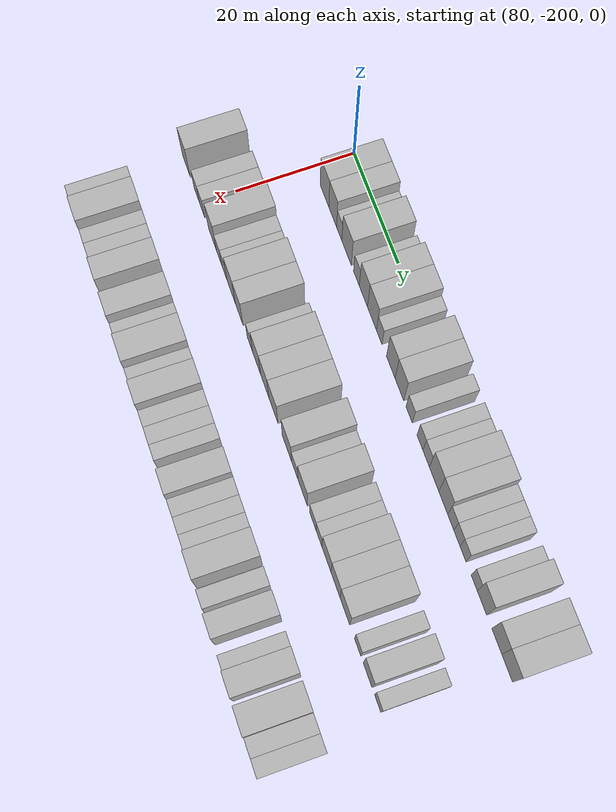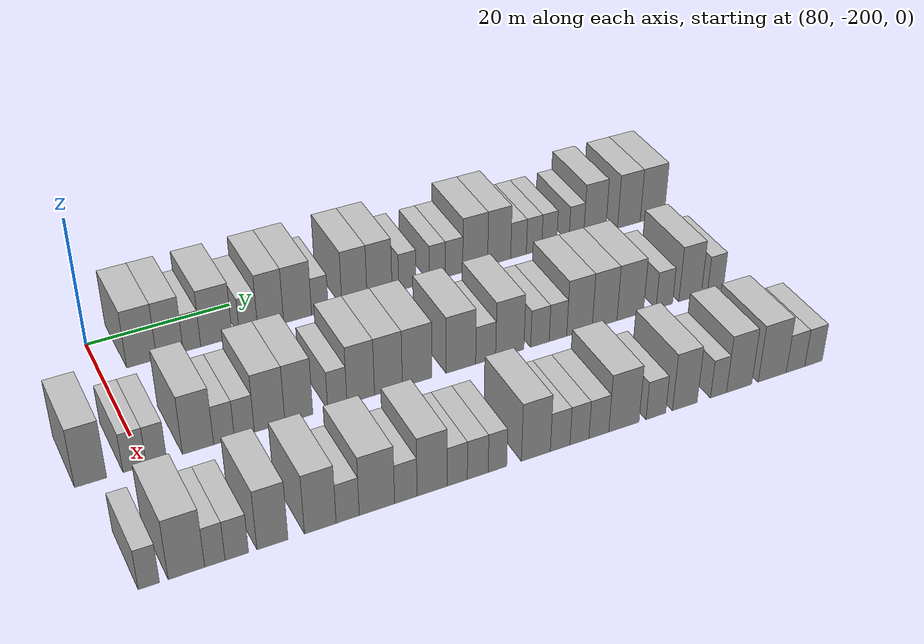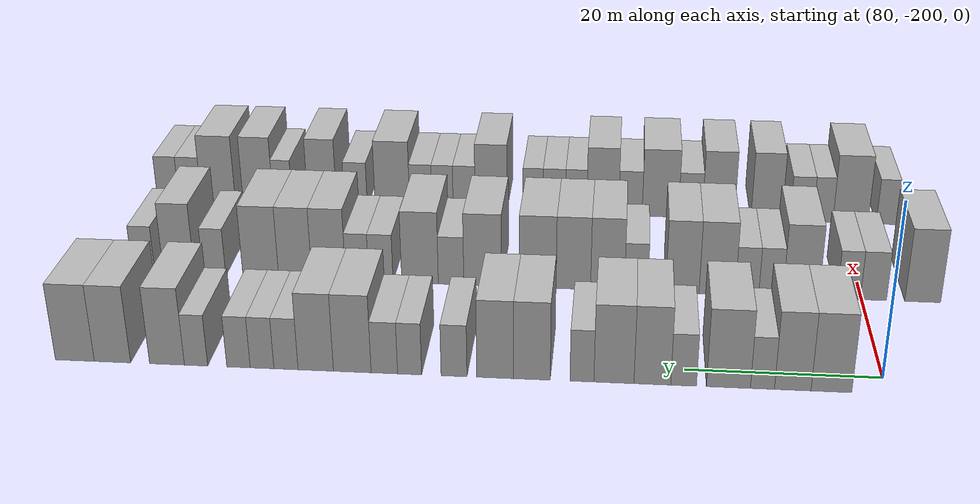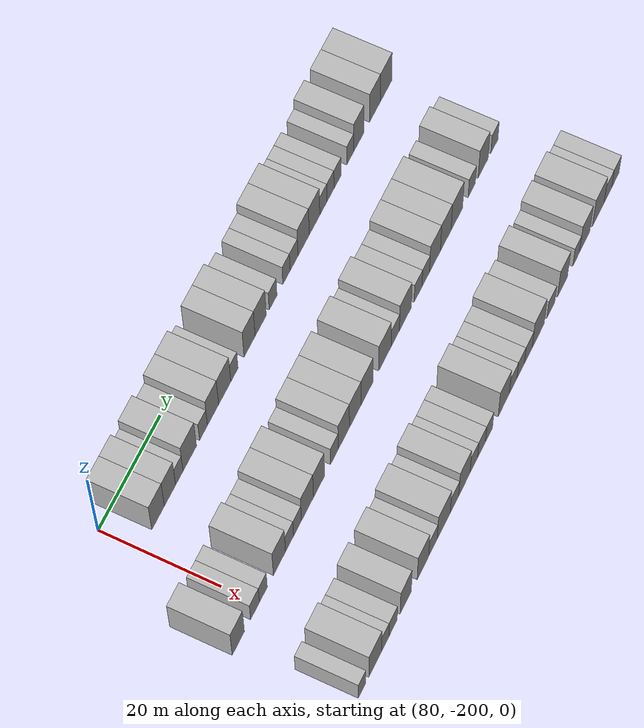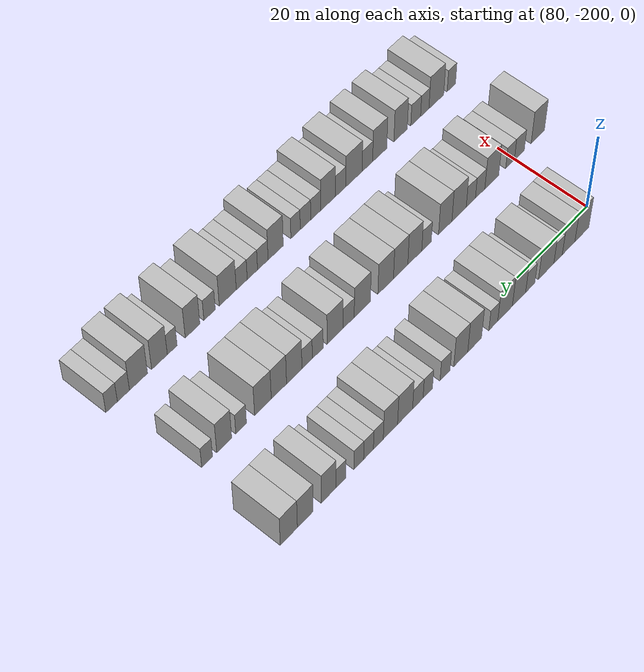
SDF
<sdf version="1.6">
 <world name="default">
  <model name="building_561">
   <static>1</static>
   <pose>82.0000 -194.5143 0 0.000000 0.000000 0.000000</pose>
   <link name="link">
    <pose>0 0 4.50 0 0 0</pose>
    <collision name="collision"><geometry><box><size>10.0000 4.0336 9.0000</size></box></geometry></collision>
    <visual name="visual">
     <cast_shadows>0</cast_shadows>
     <geometry><box><size>10.0000 4.0336 9.0000</size></box></geometry>
     <material>
      <script>
       <uri>model://HANNAS_wall/materials/scripts</uri>
       <uri>model://HANNAS_wall/materials/textures</uri>
       <name>vrc/HANNAS_wall</name>
      </script>
     </material>
    </visual>
   </link>
  </model>
  <model name="building_562">
   <static>1</static>
   <pose>82.0000 -190.6837 0 0.000000 0.000000 0.000000</pose>
   <link name="link">
    <pose>0 0 4.50 0 0 0</pose>
    <collision name="collision"><geometry><box><size>10.0000 3.6277 9.0000</size></box></geometry></collision>
    <visual name="visual">
     <cast_shadows>0</cast_shadows>
     <geometry><box><size>10.0000 3.6277 9.0000</size></box></geometry>
     <material>
      <script>
       <uri>model://HANNAS_wall/materials/scripts</uri>
       <uri>model://HANNAS_wall/materials/textures</uri>
       <name>vrc/HANNAS_wall</name>
      </script>
     </material>
    </visual>
   </link>
  </model>
  <model name="building_563">
   <static>1</static>
   <pose>82.0000 -187.6686 0 0.000000 0.000000 0.000000</pose>
   <link name="link">
    <pose>0 0 3.00 0 0 0</pose>
    <collision name="collision"><geometry><box><size>10.0000 2.4023 6.0000</size></box></geometry></collision>
    <visual name="visual">
     <cast_shadows>0</cast_shadows>
     <geometry><box><size>10.0000 2.4023 6.0000</size></box></geometry>
     <material>
      <script>
       <uri>model://HANNAS_wall/materials/scripts</uri>
       <uri>model://HANNAS_wall/materials/textures</uri>
       <name>vrc/HANNAS_wall</name>
      </script>
     </material>
    </visual>
   </link>
  </model>
  <model name="building_564">
   <static>1</static>
   <pose>82.0000 -184.2742 0 0.000000 0.000000 0.000000</pose>
   <link name="link">
    <pose>0 0 4.50 0 0 0</pose>
    <collision name="collision"><geometry><box><size>10.0000 4.3865 9.0000</size></box></geometry></collision>
    <visual name="visual">
     <cast_shadows>0</cast_shadows>
     <geometry><box><size>10.0000 4.3865 9.0000</size></box></geometry>
     <material>
      <script>
       <uri>model://HANNAS_wall/materials/scripts</uri>
       <uri>model://HANNAS_wall/materials/textures</uri>
       <name>vrc/HANNAS_wall</name>
      </script>
     </material>
    </visual>
   </link>
  </model>
  <model name="building_565">
   <static>1</static>
   <pose>82.0000 -179.7882 0 0.000000 0.000000 0.000000</pose>
   <link name="link">
    <pose>0 0 3.00 0 0 0</pose>
    <collision name="collision"><geometry><box><size>10.0000 2.5855 6.0000</size></box></geometry></collision>
    <visual name="visual">
     <cast_shadows>0</cast_shadows>
     <geometry><box><size>10.0000 2.5855 6.0000</size></box></geometry>
     <material>
      <script>
       <uri>model://HANNAS_wall/materials/scripts</uri>
       <uri>model://HANNAS_wall/materials/textures</uri>
       <name>vrc/HANNAS_wall</name>
      </script>
     </material>
    </visual>
   </link>
  </model>
  <model name="building_566">
   <static>1</static>
   <pose>82.0000 -176.6478 0 0.000000 0.000000 0.000000</pose>
   <link name="link">
    <pose>0 0 4.50 0 0 0</pose>
    <collision name="collision"><geometry><box><size>10.0000 3.6953 9.0000</size></box></geometry></collision>
    <visual name="visual">
     <cast_shadows>0</cast_shadows>
     <geometry><box><size>10.0000 3.6953 9.0000</size></box></geometry>
     <material>
      <script>
       <uri>model://HANNAS_wall/materials/scripts</uri>
       <uri>model://HANNAS_wall/materials/textures</uri>
       <name>vrc/HANNAS_wall</name>
      </script>
     </material>
    </visual>
   </link>
  </model>
  <model name="building_567">
   <static>1</static>
   <pose>82.0000 -172.7800 0 0.000000 0.000000 0.000000</pose>
   <link name="link">
    <pose>0 0 4.50 0 0 0</pose>
    <collision name="collision"><geometry><box><size>10.0000 4.0404 9.0000</size></box></geometry></collision>
    <visual name="visual">
     <cast_shadows>0</cast_shadows>
     <geometry><box><size>10.0000 4.0404 9.0000</size></box></geometry>
     <material>
      <script>
       <uri>model://HANNAS_wall/materials/scripts</uri>
       <uri>model://HANNAS_wall/materials/textures</uri>
       <name>vrc/HANNAS_wall</name>
      </script>
     </material>
    </visual>
   </link>
  </model>
  <model name="building_568">
   <static>1</static>
   <pose>82.0000 -169.5482 0 0.000000 0.000000 0.000000</pose>
   <link name="link">
    <pose>0 0 3.00 0 0 0</pose>
    <collision name="collision"><geometry><box><size>10.0000 2.4232 6.0000</size></box></geometry></collision>
    <visual name="visual">
     <cast_shadows>0</cast_shadows>
     <geometry><box><size>10.0000 2.4232 6.0000</size></box></geometry>
     <material>
      <script>
       <uri>model://HANNAS_wall/materials/scripts</uri>
       <uri>model://HANNAS_wall/materials/textures</uri>
       <name>vrc/HANNAS_wall</name>
      </script>
     </material>
    </visual>
   </link>
  </model>
  <model name="building_569">
   <static>1</static>
   <pose>82.0000 -164.4735 0 0.000000 0.000000 0.000000</pose>
   <link name="link">
    <pose>0 0 4.50 0 0 0</pose>
    <collision name="collision"><geometry><box><size>10.0000 3.7262 9.0000</size></box></geometry></collision>
    <visual name="visual">
     <cast_shadows>0</cast_shadows>
     <geometry><box><size>10.0000 3.7262 9.0000</size></box></geometry>
     <material>
      <script>
       <uri>model://HANNAS_wall/materials/scripts</uri>
       <uri>model://HANNAS_wall/materials/textures</uri>
       <name>vrc/HANNAS_wall</name>
      </script>
     </material>
    </visual>
   </link>
  </model>
  <model name="building_570">
   <static>1</static>
   <pose>82.0000 -160.7329 0 0.000000 0.000000 0.000000</pose>
   <link name="link">
    <pose>0 0 4.50 0 0 0</pose>
    <collision name="collision"><geometry><box><size>10.0000 3.7551 9.0000</size></box></geometry></collision>
    <visual name="visual">
     <cast_shadows>0</cast_shadows>
     <geometry><box><size>10.0000 3.7551 9.0000</size></box></geometry>
     <material>
      <script>
       <uri>model://HANNAS_wall/materials/scripts</uri>
       <uri>model://HANNAS_wall/materials/textures</uri>
       <name>vrc/HANNAS_wall</name>
      </script>
     </material>
    </visual>
   </link>
  </model>
  <model name="building_571">
   <static>1</static>
   <pose>82.0000 -156.5304 0 0.000000 0.000000 0.000000</pose>
   <link name="link">
    <pose>0 0 3.00 0 0 0</pose>
    <collision name="collision"><geometry><box><size>10.0000 2.6499 6.0000</size></box></geometry></collision>
    <visual name="visual">
     <cast_shadows>0</cast_shadows>
     <geometry><box><size>10.0000 2.6499 6.0000</size></box></geometry>
     <material>
      <script>
       <uri>model://HANNAS_wall/materials/scripts</uri>
       <uri>model://HANNAS_wall/materials/textures</uri>
       <name>vrc/HANNAS_wall</name>
      </script>
     </material>
    </visual>
   </link>
  </model>
  <model name="building_572">
   <static>1</static>
   <pose>82.0000 -151.9696 0 0.000000 0.000000 0.000000</pose>
   <link name="link">
    <pose>0 0 3.00 0 0 0</pose>
    <collision name="collision"><geometry><box><size>10.0000 2.4718 6.0000</size></box></geometry></collision>
    <visual name="visual">
     <cast_shadows>0</cast_shadows>
     <geometry><box><size>10.0000 2.4718 6.0000</size></box></geometry>
     <material>
      <script>
       <uri>model://HANNAS_wall/materials/scripts</uri>
       <uri>model://HANNAS_wall/materials/textures</uri>
       <name>vrc/HANNAS_wall</name>
      </script>
     </material>
    </visual>
   </link>
  </model>
  <model name="building_573">
   <static>1</static>
   <pose>82.0000 -149.3710 0 0.000000 0.000000 0.000000</pose>
   <link name="link">
    <pose>0 0 3.00 0 0 0</pose>
    <collision name="collision"><geometry><box><size>10.0000 2.7254 6.0000</size></box></geometry></collision>
    <visual name="visual">
     <cast_shadows>0</cast_shadows>
     <geometry><box><size>10.0000 2.7254 6.0000</size></box></geometry>
     <material>
      <script>
       <uri>model://HANNAS_wall/materials/scripts</uri>
       <uri>model://HANNAS_wall/materials/textures</uri>
       <name>vrc/HANNAS_wall</name>
      </script>
     </material>
    </visual>
   </link>
  </model>
  <model name="building_574">
   <static>1</static>
   <pose>82.0000 -146.0619 0 0.000000 0.000000 0.000000</pose>
   <link name="link">
    <pose>0 0 4.50 0 0 0</pose>
    <collision name="collision"><geometry><box><size>10.0000 3.8929 9.0000</size></box></geometry></collision>
    <visual name="visual">
     <cast_shadows>0</cast_shadows>
     <geometry><box><size>10.0000 3.8929 9.0000</size></box></geometry>
     <material>
      <script>
       <uri>model://HANNAS_wall/materials/scripts</uri>
       <uri>model://HANNAS_wall/materials/textures</uri>
       <name>vrc/HANNAS_wall</name>
      </script>
     </material>
    </visual>
   </link>
  </model>
  <model name="building_575">
   <static>1</static>
   <pose>82.0000 -142.2809 0 0.000000 0.000000 0.000000</pose>
   <link name="link">
    <pose>0 0 4.50 0 0 0</pose>
    <collision name="collision"><geometry><box><size>10.0000 3.6691 9.0000</size></box></geometry></collision>
    <visual name="visual">
     <cast_shadows>0</cast_shadows>
     <geometry><box><size>10.0000 3.6691 9.0000</size></box></geometry>
     <material>
      <script>
       <uri>model://HANNAS_wall/materials/scripts</uri>
       <uri>model://HANNAS_wall/materials/textures</uri>
       <name>vrc/HANNAS_wall</name>
      </script>
     </material>
    </visual>
   </link>
  </model>
  <model name="building_576">
   <static>1</static>
   <pose>82.0000 -139.1915 0 0.000000 0.000000 0.000000</pose>
   <link name="link">
    <pose>0 0 3.00 0 0 0</pose>
    <collision name="collision"><geometry><box><size>10.0000 2.5096 6.0000</size></box></geometry></collision>
    <visual name="visual">
     <cast_shadows>0</cast_shadows>
     <geometry><box><size>10.0000 2.5096 6.0000</size></box></geometry>
     <material>
      <script>
       <uri>model://HANNAS_wall/materials/scripts</uri>
       <uri>model://HANNAS_wall/materials/textures</uri>
       <name>vrc/HANNAS_wall</name>
      </script>
     </material>
    </visual>
   </link>
  </model>
  <model name="building_577">
   <static>1</static>
   <pose>82.0000 -136.7003 0 0.000000 0.000000 0.000000</pose>
   <link name="link">
    <pose>0 0 3.00 0 0 0</pose>
    <collision name="collision"><geometry><box><size>10.0000 2.4730 6.0000</size></box></geometry></collision>
    <visual name="visual">
     <cast_shadows>0</cast_shadows>
     <geometry><box><size>10.0000 2.4730 6.0000</size></box></geometry>
     <material>
      <script>
       <uri>model://HANNAS_wall/materials/scripts</uri>
       <uri>model://HANNAS_wall/materials/textures</uri>
       <name>vrc/HANNAS_wall</name>
      </script>
     </material>
    </visual>
   </link>
  </model>
  <model name="building_578">
   <static>1</static>
   <pose>82.0000 -134.2426 0 0.000000 0.000000 0.000000</pose>
   <link name="link">
    <pose>0 0 3.00 0 0 0</pose>
    <collision name="collision"><geometry><box><size>10.0000 2.4424 6.0000</size></box></geometry></collision>
    <visual name="visual">
     <cast_shadows>0</cast_shadows>
     <geometry><box><size>10.0000 2.4424 6.0000</size></box></geometry>
     <material>
      <script>
       <uri>model://HANNAS_wall/materials/scripts</uri>
       <uri>model://HANNAS_wall/materials/textures</uri>
       <name>vrc/HANNAS_wall</name>
      </script>
     </material>
    </visual>
   </link>
  </model>
  <model name="building_579">
   <static>1</static>
   <pose>82.0000 -129.8025 0 0.000000 0.000000 0.000000</pose>
   <link name="link">
    <pose>0 0 3.00 0 0 0</pose>
    <collision name="collision"><geometry><box><size>10.0000 2.4378 6.0000</size></box></geometry></collision>
    <visual name="visual">
     <cast_shadows>0</cast_shadows>
     <geometry><box><size>10.0000 2.4378 6.0000</size></box></geometry>
     <material>
      <script>
       <uri>model://HANNAS_wall/materials/scripts</uri>
       <uri>model://HANNAS_wall/materials/textures</uri>
       <name>vrc/HANNAS_wall</name>
      </script>
     </material>
    </visual>
   </link>
  </model>
  <model name="building_580">
   <static>1</static>
   <pose>82.0000 -126.7513 0 0.000000 0.000000 0.000000</pose>
   <link name="link">
    <pose>0 0 4.50 0 0 0</pose>
    <collision name="collision"><geometry><box><size>10.0000 3.6645 9.0000</size></box></geometry></collision>
    <visual name="visual">
     <cast_shadows>0</cast_shadows>
     <geometry><box><size>10.0000 3.6645 9.0000</size></box></geometry>
     <material>
      <script>
       <uri>model://HANNAS_wall/materials/scripts</uri>
       <uri>model://HANNAS_wall/materials/textures</uri>
       <name>vrc/HANNAS_wall</name>
      </script>
     </material>
    </visual>
   </link>
  </model>
  <model name="building_581">
   <static>1</static>
   <pose>82.0000 -121.0029 0 0.000000 0.000000 0.000000</pose>
   <link name="link">
    <pose>0 0 4.50 0 0 0</pose>
    <collision name="collision"><geometry><box><size>10.0000 3.8324 9.0000</size></box></geometry></collision>
    <visual name="visual">
     <cast_shadows>0</cast_shadows>
     <geometry><box><size>10.0000 3.8324 9.0000</size></box></geometry>
     <material>
      <script>
       <uri>model://HANNAS_wall/materials/scripts</uri>
       <uri>model://HANNAS_wall/materials/textures</uri>
       <name>vrc/HANNAS_wall</name>
      </script>
     </material>
    </visual>
   </link>
  </model>
  <model name="building_582">
   <static>1</static>
   <pose>82.0000 -117.0257 0 0.000000 0.000000 0.000000</pose>
   <link name="link">
    <pose>0 0 4.50 0 0 0</pose>
    <collision name="collision"><geometry><box><size>10.0000 4.1220 9.0000</size></box></geometry></collision>
    <visual name="visual">
     <cast_shadows>0</cast_shadows>
     <geometry><box><size>10.0000 4.1220 9.0000</size></box></geometry>
     <material>
      <script>
       <uri>model://HANNAS_wall/materials/scripts</uri>
       <uri>model://HANNAS_wall/materials/textures</uri>
       <name>vrc/HANNAS_wall</name>
      </script>
     </material>
    </visual>
   </link>
  </model>
  <model name="building_730">
   <static>1</static>
   <pose>101.0000 -206.6543 0 0.000000 0.000000 0.000000</pose>
   <link name="link">
    <pose>0 0 4.50 0 0 0</pose>
    <collision name="collision"><geometry><box><size>10.0000 3.9196 9.0000</size></box></geometry></collision>
    <visual name="visual">
     <cast_shadows>0</cast_shadows>
     <geometry><box><size>10.0000 3.9196 9.0000</size></box></geometry>
     <material>
      <script>
       <uri>model://HANNAS_wall/materials/scripts</uri>
       <uri>model://HANNAS_wall/materials/textures</uri>
       <name>vrc/HANNAS_wall</name>
      </script>
     </material>
    </visual>
   </link>
  </model>
  <model name="building_731">
   <static>1</static>
   <pose>101.0000 -201.2530 0 0.000000 0.000000 0.000000</pose>
   <link name="link">
    <pose>0 0 3.00 0 0 0</pose>
    <collision name="collision"><geometry><box><size>10.0000 2.8828 6.0000</size></box></geometry></collision>
    <visual name="visual">
     <cast_shadows>0</cast_shadows>
     <geometry><box><size>10.0000 2.8828 6.0000</size></box></geometry>
     <material>
      <script>
       <uri>model://HANNAS_wall/materials/scripts</uri>
       <uri>model://HANNAS_wall/materials/textures</uri>
       <name>vrc/HANNAS_wall</name>
      </script>
     </material>
    </visual>
   </link>
  </model>
  <model name="building_732">
   <static>1</static>
   <pose>101.0000 -198.5356 0 0.000000 0.000000 0.000000</pose>
   <link name="link">
    <pose>0 0 3.00 0 0 0</pose>
    <collision name="collision"><geometry><box><size>10.0000 2.5520 6.0000</size></box></geometry></collision>
    <visual name="visual">
     <cast_shadows>0</cast_shadows>
     <geometry><box><size>10.0000 2.5520 6.0000</size></box></geometry>
     <material>
      <script>
       <uri>model://HANNAS_wall/materials/scripts</uri>
       <uri>model://HANNAS_wall/materials/textures</uri>
       <name>vrc/HANNAS_wall</name>
      </script>
     </material>
    </visual>
   </link>
  </model>
  <model name="building_733">
   <static>1</static>
   <pose>101.0000 -193.2706 0 0.000000 0.000000 0.000000</pose>
   <link name="link">
    <pose>0 0 4.50 0 0 0</pose>
    <collision name="collision"><geometry><box><size>10.0000 3.9781 9.0000</size></box></geometry></collision>
    <visual name="visual">
     <cast_shadows>0</cast_shadows>
     <geometry><box><size>10.0000 3.9781 9.0000</size></box></geometry>
     <material>
      <script>
       <uri>model://HANNAS_wall/materials/scripts</uri>
       <uri>model://HANNAS_wall/materials/textures</uri>
       <name>vrc/HANNAS_wall</name>
      </script>
     </material>
    </visual>
   </link>
  </model>
  <model name="building_734">
   <static>1</static>
   <pose>101.0000 -189.9423 0 0.000000 0.000000 0.000000</pose>
   <link name="link">
    <pose>0 0 3.00 0 0 0</pose>
    <collision name="collision"><geometry><box><size>10.0000 2.6785 6.0000</size></box></geometry></collision>
    <visual name="visual">
     <cast_shadows>0</cast_shadows>
     <geometry><box><size>10.0000 2.6785 6.0000</size></box></geometry>
     <material>
      <script>
       <uri>model://HANNAS_wall/materials/scripts</uri>
       <uri>model://HANNAS_wall/materials/textures</uri>
       <name>vrc/HANNAS_wall</name>
      </script>
     </material>
    </visual>
   </link>
  </model>
  <model name="building_735">
   <static>1</static>
   <pose>101.0000 -187.3015 0 0.000000 0.000000 0.000000</pose>
   <link name="link">
    <pose>0 0 3.00 0 0 0</pose>
    <collision name="collision"><geometry><box><size>10.0000 2.6030 6.0000</size></box></geometry></collision>
    <visual name="visual">
     <cast_shadows>0</cast_shadows>
     <geometry><box><size>10.0000 2.6030 6.0000</size></box></geometry>
     <material>
      <script>
       <uri>model://HANNAS_wall/materials/scripts</uri>
       <uri>model://HANNAS_wall/materials/textures</uri>
       <name>vrc/HANNAS_wall</name>
      </script>
     </material>
    </visual>
   </link>
  </model>
  <model name="building_736">
   <static>1</static>
   <pose>101.0000 -183.9855 0 0.000000 0.000000 0.000000</pose>
   <link name="link">
    <pose>0 0 4.50 0 0 0</pose>
    <collision name="collision"><geometry><box><size>10.0000 4.0289 9.0000</size></box></geometry></collision>
    <visual name="visual">
     <cast_shadows>0</cast_shadows>
     <geometry><box><size>10.0000 4.0289 9.0000</size></box></geometry>
     <material>
      <script>
       <uri>model://HANNAS_wall/materials/scripts</uri>
       <uri>model://HANNAS_wall/materials/textures</uri>
       <name>vrc/HANNAS_wall</name>
      </script>
     </material>
    </visual>
   </link>
  </model>
  <model name="building_737">
   <static>1</static>
   <pose>101.0000 -180.1106 0 0.000000 0.000000 0.000000</pose>
   <link name="link">
    <pose>0 0 4.50 0 0 0</pose>
    <collision name="collision"><geometry><box><size>10.0000 3.7209 9.0000</size></box></geometry></collision>
    <visual name="visual">
     <cast_shadows>0</cast_shadows>
     <geometry><box><size>10.0000 3.7209 9.0000</size></box></geometry>
     <material>
      <script>
       <uri>model://HANNAS_wall/materials/scripts</uri>
       <uri>model://HANNAS_wall/materials/textures</uri>
       <name>vrc/HANNAS_wall</name>
      </script>
     </material>
    </visual>
   </link>
  </model>
  <model name="building_738">
   <static>1</static>
   <pose>101.0000 -174.9377 0 0.000000 0.000000 0.000000</pose>
   <link name="link">
    <pose>0 0 3.00 0 0 0</pose>
    <collision name="collision"><geometry><box><size>10.0000 2.6251 6.0000</size></box></geometry></collision>
    <visual name="visual">
     <cast_shadows>0</cast_shadows>
     <geometry><box><size>10.0000 2.6251 6.0000</size></box></geometry>
     <material>
      <script>
       <uri>model://HANNAS_wall/materials/scripts</uri>
       <uri>model://HANNAS_wall/materials/textures</uri>
       <name>vrc/HANNAS_wall</name>
      </script>
     </material>
    </visual>
   </link>
  </model>
  <model name="building_739">
   <static>1</static>
   <pose>101.0000 -171.7274 0 0.000000 0.000000 0.000000</pose>
   <link name="link">
    <pose>0 0 4.50 0 0 0</pose>
    <collision name="collision"><geometry><box><size>10.0000 3.7954 9.0000</size></box></geometry></collision>
    <visual name="visual">
     <cast_shadows>0</cast_shadows>
     <geometry><box><size>10.0000 3.7954 9.0000</size></box></geometry>
     <material>
      <script>
       <uri>model://HANNAS_wall/materials/scripts</uri>
       <uri>model://HANNAS_wall/materials/textures</uri>
       <name>vrc/HANNAS_wall</name>
      </script>
     </material>
    </visual>
   </link>
  </model>
  <model name="building_740">
   <static>1</static>
   <pose>101.0000 -167.8902 0 0.000000 0.000000 0.000000</pose>
   <link name="link">
    <pose>0 0 4.50 0 0 0</pose>
    <collision name="collision"><geometry><box><size>10.0000 3.8791 9.0000</size></box></geometry></collision>
    <visual name="visual">
     <cast_shadows>0</cast_shadows>
     <geometry><box><size>10.0000 3.8791 9.0000</size></box></geometry>
     <material>
      <script>
       <uri>model://HANNAS_wall/materials/scripts</uri>
       <uri>model://HANNAS_wall/materials/textures</uri>
       <name>vrc/HANNAS_wall</name>
      </script>
     </material>
    </visual>
   </link>
  </model>
  <model name="building_741">
   <static>1</static>
   <pose>101.0000 -163.8606 0 0.000000 0.000000 0.000000</pose>
   <link name="link">
    <pose>0 0 4.50 0 0 0</pose>
    <collision name="collision"><geometry><box><size>10.0000 4.1801 9.0000</size></box></geometry></collision>
    <visual name="visual">
     <cast_shadows>0</cast_shadows>
     <geometry><box><size>10.0000 4.1801 9.0000</size></box></geometry>
     <material>
      <script>
       <uri>model://HANNAS_wall/materials/scripts</uri>
       <uri>model://HANNAS_wall/materials/textures</uri>
       <name>vrc/HANNAS_wall</name>
      </script>
     </material>
    </visual>
   </link>
  </model>
  <model name="building_742">
   <static>1</static>
   <pose>101.0000 -157.6305 0 0.000000 0.000000 0.000000</pose>
   <link name="link">
    <pose>0 0 4.50 0 0 0</pose>
    <collision name="collision"><geometry><box><size>10.0000 4.2801 9.0000</size></box></geometry></collision>
    <visual name="visual">
     <cast_shadows>0</cast_shadows>
     <geometry><box><size>10.0000 4.2801 9.0000</size></box></geometry>
     <material>
      <script>
       <uri>model://HANNAS_wall/materials/scripts</uri>
       <uri>model://HANNAS_wall/materials/textures</uri>
       <name>vrc/HANNAS_wall</name>
      </script>
     </material>
    </visual>
   </link>
  </model>
  <model name="building_743">
   <static>1</static>
   <pose>101.0000 -154.0399 0 0.000000 0.000000 0.000000</pose>
   <link name="link">
    <pose>0 0 3.00 0 0 0</pose>
    <collision name="collision"><geometry><box><size>10.0000 2.9012 6.0000</size></box></geometry></collision>
    <visual name="visual">
     <cast_shadows>0</cast_shadows>
     <geometry><box><size>10.0000 2.9012 6.0000</size></box></geometry>
     <material>
      <script>
       <uri>model://HANNAS_wall/materials/scripts</uri>
       <uri>model://HANNAS_wall/materials/textures</uri>
       <name>vrc/HANNAS_wall</name>
      </script>
     </material>
    </visual>
   </link>
  </model>
  <model name="building_744">
   <static>1</static>
   <pose>101.0000 -150.4990 0 0.000000 0.000000 0.000000</pose>
   <link name="link">
    <pose>0 0 4.50 0 0 0</pose>
    <collision name="collision"><geometry><box><size>10.0000 4.1807 9.0000</size></box></geometry></collision>
    <visual name="visual">
     <cast_shadows>0</cast_shadows>
     <geometry><box><size>10.0000 4.1807 9.0000</size></box></geometry>
     <material>
      <script>
       <uri>model://HANNAS_wall/materials/scripts</uri>
       <uri>model://HANNAS_wall/materials/textures</uri>
       <name>vrc/HANNAS_wall</name>
      </script>
     </material>
    </visual>
   </link>
  </model>
  <model name="building_745">
   <static>1</static>
   <pose>101.0000 -146.0150 0 0.000000 0.000000 0.000000</pose>
   <link name="link">
    <pose>0 0 3.00 0 0 0</pose>
    <collision name="collision"><geometry><box><size>10.0000 2.7872 6.0000</size></box></geometry></collision>
    <visual name="visual">
     <cast_shadows>0</cast_shadows>
     <geometry><box><size>10.0000 2.7872 6.0000</size></box></geometry>
     <material>
      <script>
       <uri>model://HANNAS_wall/materials/scripts</uri>
       <uri>model://HANNAS_wall/materials/textures</uri>
       <name>vrc/HANNAS_wall</name>
      </script>
     </material>
    </visual>
   </link>
  </model>
  <model name="building_746">
   <static>1</static>
   <pose>101.0000 -143.2998 0 0.000000 0.000000 0.000000</pose>
   <link name="link">
    <pose>0 0 3.00 0 0 0</pose>
    <collision name="collision"><geometry><box><size>10.0000 2.6431 6.0000</size></box></geometry></collision>
    <visual name="visual">
     <cast_shadows>0</cast_shadows>
     <geometry><box><size>10.0000 2.6431 6.0000</size></box></geometry>
     <material>
      <script>
       <uri>model://HANNAS_wall/materials/scripts</uri>
       <uri>model://HANNAS_wall/materials/textures</uri>
       <name>vrc/HANNAS_wall</name>
      </script>
     </material>
    </visual>
   </link>
  </model>
  <model name="building_747">
   <static>1</static>
   <pose>101.0000 -140.0301 0 0.000000 0.000000 0.000000</pose>
   <link name="link">
    <pose>0 0 4.50 0 0 0</pose>
    <collision name="collision"><geometry><box><size>10.0000 3.8963 9.0000</size></box></geometry></collision>
    <visual name="visual">
     <cast_shadows>0</cast_shadows>
     <geometry><box><size>10.0000 3.8963 9.0000</size></box></geometry>
     <material>
      <script>
       <uri>model://HANNAS_wall/materials/scripts</uri>
       <uri>model://HANNAS_wall/materials/textures</uri>
       <name>vrc/HANNAS_wall</name>
      </script>
     </material>
    </visual>
   </link>
  </model>
  <model name="building_748">
   <static>1</static>
   <pose>101.0000 -136.1657 0 0.000000 0.000000 0.000000</pose>
   <link name="link">
    <pose>0 0 4.50 0 0 0</pose>
    <collision name="collision"><geometry><box><size>10.0000 3.8326 9.0000</size></box></geometry></collision>
    <visual name="visual">
     <cast_shadows>0</cast_shadows>
     <geometry><box><size>10.0000 3.8326 9.0000</size></box></geometry>
     <material>
      <script>
       <uri>model://HANNAS_wall/materials/scripts</uri>
       <uri>model://HANNAS_wall/materials/textures</uri>
       <name>vrc/HANNAS_wall</name>
      </script>
     </material>
    </visual>
   </link>
  </model>
  <model name="building_749">
   <static>1</static>
   <pose>101.0000 -132.1764 0 0.000000 0.000000 0.000000</pose>
   <link name="link">
    <pose>0 0 4.50 0 0 0</pose>
    <collision name="collision"><geometry><box><size>10.0000 4.1459 9.0000</size></box></geometry></collision>
    <visual name="visual">
     <cast_shadows>0</cast_shadows>
     <geometry><box><size>10.0000 4.1459 9.0000</size></box></geometry>
     <material>
      <script>
       <uri>model://HANNAS_wall/materials/scripts</uri>
       <uri>model://HANNAS_wall/materials/textures</uri>
       <name>vrc/HANNAS_wall</name>
      </script>
     </material>
    </visual>
   </link>
  </model>
  <model name="building_750">
   <static>1</static>
   <pose>101.0000 -126.7906 0 0.000000 0.000000 0.000000</pose>
   <link name="link">
    <pose>0 0 3.00 0 0 0</pose>
    <collision name="collision"><geometry><box><size>10.0000 2.6259 6.0000</size></box></geometry></collision>
    <visual name="visual">
     <cast_shadows>0</cast_shadows>
     <geometry><box><size>10.0000 2.6259 6.0000</size></box></geometry>
     <material>
      <script>
       <uri>model://HANNAS_wall/materials/scripts</uri>
       <uri>model://HANNAS_wall/materials/textures</uri>
       <name>vrc/HANNAS_wall</name>
      </script>
     </material>
    </visual>
   </link>
  </model>
  <model name="building_751">
   <static>1</static>
   <pose>101.0000 -122.6589 0 0.000000 0.000000 0.000000</pose>
   <link name="link">
    <pose>0 0 4.50 0 0 0</pose>
    <collision name="collision"><geometry><box><size>10.0000 3.6375 9.0000</size></box></geometry></collision>
    <visual name="visual">
     <cast_shadows>0</cast_shadows>
     <geometry><box><size>10.0000 3.6375 9.0000</size></box></geometry>
     <material>
      <script>
       <uri>model://HANNAS_wall/materials/scripts</uri>
       <uri>model://HANNAS_wall/materials/textures</uri>
       <name>vrc/HANNAS_wall</name>
      </script>
     </material>
    </visual>
   </link>
  </model>
  <model name="building_752">
   <static>1</static>
   <pose>101.0000 -118.5354 0 0.000000 0.000000 0.000000</pose>
   <link name="link">
    <pose>0 0 3.00 0 0 0</pose>
    <collision name="collision"><geometry><box><size>10.0000 2.6094 6.0000</size></box></geometry></collision>
    <visual name="visual">
     <cast_shadows>0</cast_shadows>
     <geometry><box><size>10.0000 2.6094 6.0000</size></box></geometry>
     <material>
      <script>
       <uri>model://HANNAS_wall/materials/scripts</uri>
       <uri>model://HANNAS_wall/materials/textures</uri>
       <name>vrc/HANNAS_wall</name>
      </script>
     </material>
    </visual>
   </link>
  </model>
  <model name="building_906">
   <static>1</static>
   <pose>120.0000 -205.4232 0 0.000000 0.000000 0.000000</pose>
   <link name="link">
    <pose>0 0 3.00 0 0 0</pose>
    <collision name="collision"><geometry><box><size>10.0000 2.4453 6.0000</size></box></geometry></collision>
    <visual name="visual">
     <cast_shadows>0</cast_shadows>
     <geometry><box><size>10.0000 2.4453 6.0000</size></box></geometry>
     <material>
      <script>
       <uri>model://HANNAS_wall/materials/scripts</uri>
       <uri>model://HANNAS_wall/materials/textures</uri>
       <name>vrc/HANNAS_wall</name>
      </script>
     </material>
    </visual>
   </link>
  </model>
  <model name="building_907">
   <static>1</static>
   <pose>120.0000 -201.0662 0 0.000000 0.000000 0.000000</pose>
   <link name="link">
    <pose>0 0 4.50 0 0 0</pose>
    <collision name="collision"><geometry><box><size>10.0000 4.2687 9.0000</size></box></geometry></collision>
    <visual name="visual">
     <cast_shadows>0</cast_shadows>
     <geometry><box><size>10.0000 4.2687 9.0000</size></box></geometry>
     <material>
      <script>
       <uri>model://HANNAS_wall/materials/scripts</uri>
       <uri>model://HANNAS_wall/materials/textures</uri>
       <name>vrc/HANNAS_wall</name>
      </script>
     </material>
    </visual>
   </link>
  </model>
  <model name="building_908">
   <static>1</static>
   <pose>120.0000 -197.7296 0 0.000000 0.000000 0.000000</pose>
   <link name="link">
    <pose>0 0 3.00 0 0 0</pose>
    <collision name="collision"><geometry><box><size>10.0000 2.4046 6.0000</size></box></geometry></collision>
    <visual name="visual">
     <cast_shadows>0</cast_shadows>
     <geometry><box><size>10.0000 2.4046 6.0000</size></box></geometry>
     <material>
      <script>
       <uri>model://HANNAS_wall/materials/scripts</uri>
       <uri>model://HANNAS_wall/materials/textures</uri>
       <name>vrc/HANNAS_wall</name>
      </script>
     </material>
    </visual>
   </link>
  </model>
  <model name="building_909">
   <static>1</static>
   <pose>120.0000 -195.1251 0 0.000000 0.000000 0.000000</pose>
   <link name="link">
    <pose>0 0 3.00 0 0 0</pose>
    <collision name="collision"><geometry><box><size>10.0000 2.8043 6.0000</size></box></geometry></collision>
    <visual name="visual">
     <cast_shadows>0</cast_shadows>
     <geometry><box><size>10.0000 2.8043 6.0000</size></box></geometry>
     <material>
      <script>
       <uri>model://HANNAS_wall/materials/scripts</uri>
       <uri>model://HANNAS_wall/materials/textures</uri>
       <name>vrc/HANNAS_wall</name>
      </script>
     </material>
    </visual>
   </link>
  </model>
  <model name="building_910">
   <static>1</static>
   <pose>120.0000 -190.8354 0 0.000000 0.000000 0.000000</pose>
   <link name="link">
    <pose>0 0 4.50 0 0 0</pose>
    <collision name="collision"><geometry><box><size>10.0000 3.7750 9.0000</size></box></geometry></collision>
    <visual name="visual">
     <cast_shadows>0</cast_shadows>
     <geometry><box><size>10.0000 3.7750 9.0000</size></box></geometry>
     <material>
      <script>
       <uri>model://HANNAS_wall/materials/scripts</uri>
       <uri>model://HANNAS_wall/materials/textures</uri>
       <name>vrc/HANNAS_wall</name>
      </script>
     </material>
    </visual>
   </link>
  </model>
  <model name="building_911">
   <static>1</static>
   <pose>120.0000 -184.9771 0 0.000000 0.000000 0.000000</pose>
   <link name="link">
    <pose>0 0 4.50 0 0 0</pose>
    <collision name="collision"><geometry><box><size>10.0000 3.9416 9.0000</size></box></geometry></collision>
    <visual name="visual">
     <cast_shadows>0</cast_shadows>
     <geometry><box><size>10.0000 3.9416 9.0000</size></box></geometry>
     <material>
      <script>
       <uri>model://HANNAS_wall/materials/scripts</uri>
       <uri>model://HANNAS_wall/materials/textures</uri>
       <name>vrc/HANNAS_wall</name>
      </script>
     </material>
    </visual>
   </link>
  </model>
  <model name="building_912">
   <static>1</static>
   <pose>120.0000 -181.5515 0 0.000000 0.000000 0.000000</pose>
   <link name="link">
    <pose>0 0 3.00 0 0 0</pose>
    <collision name="collision"><geometry><box><size>10.0000 2.9095 6.0000</size></box></geometry></collision>
    <visual name="visual">
     <cast_shadows>0</cast_shadows>
     <geometry><box><size>10.0000 2.9095 6.0000</size></box></geometry>
     <material>
      <script>
       <uri>model://HANNAS_wall/materials/scripts</uri>
       <uri>model://HANNAS_wall/materials/textures</uri>
       <name>vrc/HANNAS_wall</name>
      </script>
     </material>
    </visual>
   </link>
  </model>
  <model name="building_913">
   <static>1</static>
   <pose>120.0000 -177.8474 0 0.000000 0.000000 0.000000</pose>
   <link name="link">
    <pose>0 0 4.50 0 0 0</pose>
    <collision name="collision"><geometry><box><size>10.0000 4.4988 9.0000</size></box></geometry></collision>
    <visual name="visual">
     <cast_shadows>0</cast_shadows>
     <geometry><box><size>10.0000 4.4988 9.0000</size></box></geometry>
     <material>
      <script>
       <uri>model://HANNAS_wall/materials/scripts</uri>
       <uri>model://HANNAS_wall/materials/textures</uri>
       <name>vrc/HANNAS_wall</name>
      </script>
     </material>
    </visual>
   </link>
  </model>
  <model name="building_914">
   <static>1</static>
   <pose>120.0000 -174.1476 0 0.000000 0.000000 0.000000</pose>
   <link name="link">
    <pose>0 0 3.00 0 0 0</pose>
    <collision name="collision"><geometry><box><size>10.0000 2.9007 6.0000</size></box></geometry></collision>
    <visual name="visual">
     <cast_shadows>0</cast_shadows>
     <geometry><box><size>10.0000 2.9007 6.0000</size></box></geometry>
     <material>
      <script>
       <uri>model://HANNAS_wall/materials/scripts</uri>
       <uri>model://HANNAS_wall/materials/textures</uri>
       <name>vrc/HANNAS_wall</name>
      </script>
     </material>
    </visual>
   </link>
  </model>
  <model name="building_915">
   <static>1</static>
   <pose>120.0000 -170.7281 0 0.000000 0.000000 0.000000</pose>
   <link name="link">
    <pose>0 0 4.50 0 0 0</pose>
    <collision name="collision"><geometry><box><size>10.0000 3.9384 9.0000</size></box></geometry></collision>
    <visual name="visual">
     <cast_shadows>0</cast_shadows>
     <geometry><box><size>10.0000 3.9384 9.0000</size></box></geometry>
     <material>
      <script>
       <uri>model://HANNAS_wall/materials/scripts</uri>
       <uri>model://HANNAS_wall/materials/textures</uri>
       <name>vrc/HANNAS_wall</name>
      </script>
     </material>
    </visual>
   </link>
  </model>
  <model name="building_916">
   <static>1</static>
   <pose>120.0000 -167.4327 0 0.000000 0.000000 0.000000</pose>
   <link name="link">
    <pose>0 0 3.00 0 0 0</pose>
    <collision name="collision"><geometry><box><size>10.0000 2.6523 6.0000</size></box></geometry></collision>
    <visual name="visual">
     <cast_shadows>0</cast_shadows>
     <geometry><box><size>10.0000 2.6523 6.0000</size></box></geometry>
     <material>
      <script>
       <uri>model://HANNAS_wall/materials/scripts</uri>
       <uri>model://HANNAS_wall/materials/textures</uri>
       <name>vrc/HANNAS_wall</name>
      </script>
     </material>
    </visual>
   </link>
  </model>
  <model name="building_917">
   <static>1</static>
   <pose>120.0000 -164.7140 0 0.000000 0.000000 0.000000</pose>
   <link name="link">
    <pose>0 0 3.00 0 0 0</pose>
    <collision name="collision"><geometry><box><size>10.0000 2.7850 6.0000</size></box></geometry></collision>
    <visual name="visual">
     <cast_shadows>0</cast_shadows>
     <geometry><box><size>10.0000 2.7850 6.0000</size></box></geometry>
     <material>
      <script>
       <uri>model://HANNAS_wall/materials/scripts</uri>
       <uri>model://HANNAS_wall/materials/textures</uri>
       <name>vrc/HANNAS_wall</name>
      </script>
     </material>
    </visual>
   </link>
  </model>
  <model name="building_918">
   <static>1</static>
   <pose>120.0000 -162.0778 0 0.000000 0.000000 0.000000</pose>
   <link name="link">
    <pose>0 0 3.00 0 0 0</pose>
    <collision name="collision"><geometry><box><size>10.0000 2.4874 6.0000</size></box></geometry></collision>
    <visual name="visual">
     <cast_shadows>0</cast_shadows>
     <geometry><box><size>10.0000 2.4874 6.0000</size></box></geometry>
     <material>
      <script>
       <uri>model://HANNAS_wall/materials/scripts</uri>
       <uri>model://HANNAS_wall/materials/textures</uri>
       <name>vrc/HANNAS_wall</name>
      </script>
     </material>
    </visual>
   </link>
  </model>
  <model name="building_919">
   <static>1</static>
   <pose>120.0000 -156.8474 0 0.000000 0.000000 0.000000</pose>
   <link name="link">
    <pose>0 0 4.50 0 0 0</pose>
    <collision name="collision"><geometry><box><size>10.0000 3.9734 9.0000</size></box></geometry></collision>
    <visual name="visual">
     <cast_shadows>0</cast_shadows>
     <geometry><box><size>10.0000 3.9734 9.0000</size></box></geometry>
     <material>
      <script>
       <uri>model://HANNAS_wall/materials/scripts</uri>
       <uri>model://HANNAS_wall/materials/textures</uri>
       <name>vrc/HANNAS_wall</name>
      </script>
     </material>
    </visual>
   </link>
  </model>
  <model name="building_920">
   <static>1</static>
   <pose>120.0000 -153.4879 0 0.000000 0.000000 0.000000</pose>
   <link name="link">
    <pose>0 0 3.00 0 0 0</pose>
    <collision name="collision"><geometry><box><size>10.0000 2.7456 6.0000</size></box></geometry></collision>
    <visual name="visual">
     <cast_shadows>0</cast_shadows>
     <geometry><box><size>10.0000 2.7456 6.0000</size></box></geometry>
     <material>
      <script>
       <uri>model://HANNAS_wall/materials/scripts</uri>
       <uri>model://HANNAS_wall/materials/textures</uri>
       <name>vrc/HANNAS_wall</name>
      </script>
     </material>
    </visual>
   </link>
  </model>
  <model name="building_921">
   <static>1</static>
   <pose>120.0000 -150.7846 0 0.000000 0.000000 0.000000</pose>
   <link name="link">
    <pose>0 0 3.00 0 0 0</pose>
    <collision name="collision"><geometry><box><size>10.0000 2.6610 6.0000</size></box></geometry></collision>
    <visual name="visual">
     <cast_shadows>0</cast_shadows>
     <geometry><box><size>10.0000 2.6610 6.0000</size></box></geometry>
     <material>
      <script>
       <uri>model://HANNAS_wall/materials/scripts</uri>
       <uri>model://HANNAS_wall/materials/textures</uri>
       <name>vrc/HANNAS_wall</name>
      </script>
     </material>
    </visual>
   </link>
  </model>
  <model name="building_922">
   <static>1</static>
   <pose>120.0000 -148.0499 0 0.000000 0.000000 0.000000</pose>
   <link name="link">
    <pose>0 0 3.00 0 0 0</pose>
    <collision name="collision"><geometry><box><size>10.0000 2.8084 6.0000</size></box></geometry></collision>
    <visual name="visual">
     <cast_shadows>0</cast_shadows>
     <geometry><box><size>10.0000 2.8084 6.0000</size></box></geometry>
     <material>
      <script>
       <uri>model://HANNAS_wall/materials/scripts</uri>
       <uri>model://HANNAS_wall/materials/textures</uri>
       <name>vrc/HANNAS_wall</name>
      </script>
     </material>
    </visual>
   </link>
  </model>
  <model name="building_923">
   <static>1</static>
   <pose>120.0000 -144.4741 0 0.000000 0.000000 0.000000</pose>
   <link name="link">
    <pose>0 0 4.50 0 0 0</pose>
    <collision name="collision"><geometry><box><size>10.0000 4.3432 9.0000</size></box></geometry></collision>
    <visual name="visual">
     <cast_shadows>0</cast_shadows>
     <geometry><box><size>10.0000 4.3432 9.0000</size></box></geometry>
     <material>
      <script>
       <uri>model://HANNAS_wall/materials/scripts</uri>
       <uri>model://HANNAS_wall/materials/textures</uri>
       <name>vrc/HANNAS_wall</name>
      </script>
     </material>
    </visual>
   </link>
  </model>
  <model name="building_924">
   <static>1</static>
   <pose>120.0000 -139.8643 0 0.000000 0.000000 0.000000</pose>
   <link name="link">
    <pose>0 0 3.00 0 0 0</pose>
    <collision name="collision"><geometry><box><size>10.0000 2.8765 6.0000</size></box></geometry></collision>
    <visual name="visual">
     <cast_shadows>0</cast_shadows>
     <geometry><box><size>10.0000 2.8765 6.0000</size></box></geometry>
     <material>
      <script>
       <uri>model://HANNAS_wall/materials/scripts</uri>
       <uri>model://HANNAS_wall/materials/textures</uri>
       <name>vrc/HANNAS_wall</name>
      </script>
     </material>
    </visual>
   </link>
  </model>
  <model name="building_925">
   <static>1</static>
   <pose>120.0000 -135.6022 0 0.000000 0.000000 0.000000</pose>
   <link name="link">
    <pose>0 0 4.50 0 0 0</pose>
    <collision name="collision"><geometry><box><size>10.0000 3.6476 9.0000</size></box></geometry></collision>
    <visual name="visual">
     <cast_shadows>0</cast_shadows>
     <geometry><box><size>10.0000 3.6476 9.0000</size></box></geometry>
     <material>
      <script>
       <uri>model://HANNAS_wall/materials/scripts</uri>
       <uri>model://HANNAS_wall/materials/textures</uri>
       <name>vrc/HANNAS_wall</name>
      </script>
     </material>
    </visual>
   </link>
  </model>
  <model name="building_926">
   <static>1</static>
   <pose>120.0000 -130.5686 0 0.000000 0.000000 0.000000</pose>
   <link name="link">
    <pose>0 0 3.00 0 0 0</pose>
    <collision name="collision"><geometry><box><size>10.0000 2.4195 6.0000</size></box></geometry></collision>
    <visual name="visual">
     <cast_shadows>0</cast_shadows>
     <geometry><box><size>10.0000 2.4195 6.0000</size></box></geometry>
     <material>
      <script>
       <uri>model://HANNAS_wall/materials/scripts</uri>
       <uri>model://HANNAS_wall/materials/textures</uri>
       <name>vrc/HANNAS_wall</name>
      </script>
     </material>
    </visual>
   </link>
  </model>
  <model name="building_927">
   <static>1</static>
   <pose>120.0000 -127.4418 0 0.000000 0.000000 0.000000</pose>
   <link name="link">
    <pose>0 0 4.50 0 0 0</pose>
    <collision name="collision"><geometry><box><size>10.0000 3.8341 9.0000</size></box></geometry></collision>
    <visual name="visual">
     <cast_shadows>0</cast_shadows>
     <geometry><box><size>10.0000 3.8341 9.0000</size></box></geometry>
     <material>
      <script>
       <uri>model://HANNAS_wall/materials/scripts</uri>
       <uri>model://HANNAS_wall/materials/textures</uri>
       <name>vrc/HANNAS_wall</name>
      </script>
     </material>
    </visual>
   </link>
  </model>
  <model name="building_928">
   <static>1</static>
   <pose>120.0000 -122.3481 0 0.000000 0.000000 0.000000</pose>
   <link name="link">
    <pose>0 0 4.50 0 0 0</pose>
    <collision name="collision"><geometry><box><size>10.0000 4.3531 9.0000</size></box></geometry></collision>
    <visual name="visual">
     <cast_shadows>0</cast_shadows>
     <geometry><box><size>10.0000 4.3531 9.0000</size></box></geometry>
     <material>
      <script>
       <uri>model://HANNAS_wall/materials/scripts</uri>
       <uri>model://HANNAS_wall/materials/textures</uri>
       <name>vrc/HANNAS_wall</name>
      </script>
     </material>
    </visual>
   </link>
  </model>
  <model name="building_929">
   <static>1</static>
   <pose>120.0000 -118.7248 0 0.000000 0.000000 0.000000</pose>
   <link name="link">
    <pose>0 0 3.00 0 0 0</pose>
    <collision name="collision"><geometry><box><size>10.0000 2.8936 6.0000</size></box></geometry></collision>
    <visual name="visual">
     <cast_shadows>0</cast_shadows>
     <geometry><box><size>10.0000 2.8936 6.0000</size></box></geometry>
     <material>
      <script>
       <uri>model://HANNAS_wall/materials/scripts</uri>
       <uri>model://HANNAS_wall/materials/textures</uri>
       <name>vrc/HANNAS_wall</name>
      </script>
     </material>
    </visual>
   </link>
  </model>
  <model name="building_930">
   <static>1</static>
   <pose>120.0000 -115.9030 0 0.000000 0.000000 0.000000</pose>
   <link name="link">
    <pose>0 0 3.00 0 0 0</pose>
    <collision name="collision"><geometry><box><size>10.0000 2.7500 6.0000</size></box></geometry></collision>
    <visual name="visual">
     <cast_shadows>0</cast_shadows>
     <geometry><box><size>10.0000 2.7500 6.0000</size></box></geometry>
     <material>
      <script>
       <uri>model://HANNAS_wall/materials/scripts</uri>
       <uri>model://HANNAS_wall/materials/textures</uri>
       <name>vrc/HANNAS_wall</name>
      </script>
     </material>
    </visual>
   </link>
  </model>
 </world>
</sdf>
